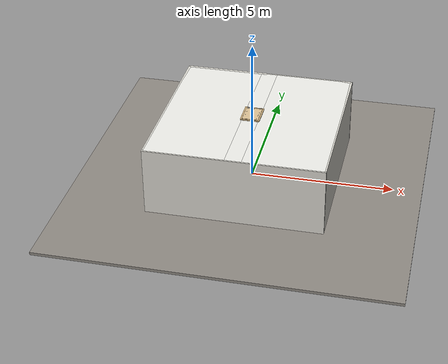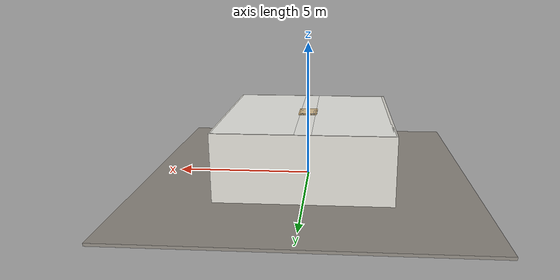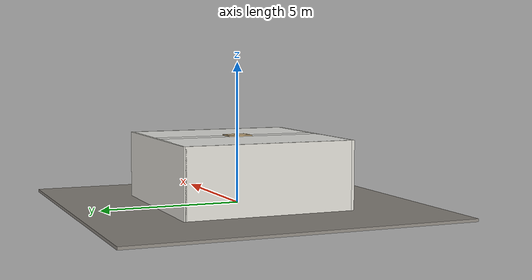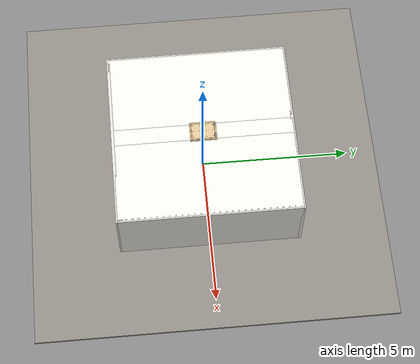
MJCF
<?xml version="1.0" ?>
<mujoco model="db0121_hatch_ceiling_full">
  <compiler angle="radian" meshdir="../../hardware" texturedir="../../textures" autolimits="true" inertiafromgeom="false"/>
  <option timestep="0.002" integrator="implicitfast" cone="elliptic" impratio="10" noslip_iterations="3">
    <flag multiccd="enable"/>
  </option>
  <size memory="16M"/>
  <default>
    <geom condim="4" solref="0.005 1" solimp="0.95 0.99 0.001"/>
    <joint solreflimit="0.005 1" solimplimit="0.95 0.99 0.001"/>
    <tendon solreflimit="0.005 1"/>
    <equality solref="0.002 1"/>
  </default>
  <visual>
    <headlight ambient="0.4 0.4 0.4" diffuse="0.7 0.7 0.7" specular="0.2 0.2 0.2"/>
    <quality shadowsize="4096"/>
    <map znear="0.01" zfar="60"/>
  </visual>
  <asset>
    <material name="mat_floor" rgba="0.55 0.53 0.5 1" specular="0.2" shininess="0.15" reflectance="0"/>
    <material name="mat_wall" rgba="0.78 0.76 0.7 1" specular="0.2" shininess="0.1" reflectance="0"/>
    <material name="mat_ceiling" rgba="0.92 0.92 0.9 1" specular="0.2" shininess="0.1" reflectance="0"/>
    <material name="mat_room_wall" rgba="0.86 0.85 0.82 1" specular="0.2" shininess="0.1" reflectance="0"/>
    <material name="mat_frame" rgba="0.82 0.7 0.5 1" specular="0.2" shininess="0.45" reflectance="0"/>
    <material name="mat_leaf" rgba="0.85 0.75 0.58 1" specular="0.2" shininess="0.4" reflectance="0"/>
    <material name="mat_hinge" rgba="0.65 0.66 0.68 1" specular="0.74" shininess="0.5" reflectance="0.36"/>
    <material name="mat_rivet" rgba="0.55 0.56 0.58 1" specular="0.8" shininess="0.55" reflectance="0.4"/>
    <material name="mat_op_steel" rgba="0.55 0.56 0.58 1" specular="0.8" shininess="0.55" reflectance="0.4"/>
    <material name="mat_strut" rgba="0.75 0.76 0.77 1" specular="0.8" shininess="0.65" reflectance="0.4"/>
    <texture name="skybox" type="skybox" builtin="gradient" rgb1="0.6 0.7 0.85" rgb2="0.9 0.92 0.95" width="256" height="256"/>
  </asset>
  <worldbody>
    <light name="sun" pos="1.5 -2.5 4" dir="-0.3 0.5 -0.8" directional="true" diffuse="0.8 0.8 0.8" specular="0.3 0.3 0.3" castshadow="true"/>
    <light name="fill" pos="-1.5 2.5 3" dir="0.3 -0.5 -0.7" directional="true" diffuse="0.35 0.35 0.4" castshadow="false"/>
    <camera name="robot_view" pos="0 -1.875 3.31" xyaxes="1 0 0 0 0.26963 0.962964" fovy="52"/>
    <camera name="far_view" pos="0 1.875 3.31" xyaxes="-1 0 0 0 -0.26963 0.962964" fovy="52"/>
    <camera name="iso" pos="1.425 -1.575 3.61" xyaxes="0.741536 0.670913 0 -0.242917 0.268487 0.932151" fovy="46"/>
    <camera name="detail_handle" pos="0.65 -0.55 1.55" xyaxes="0.843661 0.536875 0 0.426006 -0.669439 0.608581" fovy="38"/>
    <geom name="floor" type="box" size="6 6 0.05" pos="0 0 -0.05" material="mat_floor" group="0" contype="1" conaffinity="1" friction="0.8 0.005 0.0001" density="2400"/>
    <geom name="ceil_a" type="box" size="1.3575 3 0.05" pos="-1.6425 0 2.35" material="mat_ceiling" group="0" contype="1" conaffinity="1" friction="0.6 0.005 0.0001" density="600"/>
    <geom name="ceil_b" type="box" size="1.3575 3 0.05" pos="1.6425 0 2.35" material="mat_ceiling" group="0" contype="1" conaffinity="1" friction="0.6 0.005 0.0001" density="600"/>
    <geom name="ceil_c" type="box" size="0.285 1.3075 0.05" pos="0 -1.6925 2.35" material="mat_ceiling" group="0" contype="1" conaffinity="1" friction="0.6 0.005 0.0001" density="600"/>
    <geom name="ceil_d" type="box" size="0.285 1.3075 0.05" pos="0 1.6925 2.35" material="mat_ceiling" group="0" contype="1" conaffinity="1" friction="0.6 0.005 0.0001" density="600"/>
    <geom name="room_wall_l" type="box" size="0.05 3 1.2" pos="-3 0 1.2" material="mat_room_wall" group="0" contype="1" conaffinity="1" friction="0.6 0.005 0.0001" density="800"/>
    <geom name="room_wall_r" type="box" size="0.05 3 1.2" pos="3 0 1.2" material="mat_room_wall" group="0" contype="1" conaffinity="1" friction="0.6 0.005 0.0001" density="800"/>
    <geom name="room_wall_n" type="box" size="3.05 0.05 1.2" pos="0 -3 1.2" material="mat_room_wall" group="0" contype="1" conaffinity="1" friction="0.6 0.005 0.0001" density="800"/>
    <geom name="room_wall_f" type="box" size="3.05 0.05 1.2" pos="0 3 1.2" material="mat_room_wall" group="0" contype="1" conaffinity="1" friction="0.6 0.005 0.0001" density="800"/>
    <geom name="curb_l" type="box" size="0.025 0.435 0.02" pos="-0.31 0 2.42" material="mat_frame" group="0" contype="1" conaffinity="1" friction="0.6 0.005 0.0001" density="7850"/>
    <geom name="curb_r" type="box" size="0.025 0.435 0.02" pos="0.31 0 2.42" material="mat_frame" group="0" contype="1" conaffinity="1" friction="0.6 0.005 0.0001" density="7850"/>
    <geom name="curb_n" type="box" size="0.285 0.025 0.02" pos="0 -0.41 2.42" material="mat_frame" group="0" contype="1" conaffinity="1" friction="0.6 0.005 0.0001" density="7850"/>
    <geom name="curb_f" type="box" size="0.285 0.025 0.02" pos="0 0.41 2.42" material="mat_frame" group="0" contype="1" conaffinity="1" friction="0.6 0.005 0.0001" density="7850"/>
    <geom name="hatch_hinge_0_curb_n" type="cylinder" size="0.01 0.018" pos="-0.234 0.395 2.44" quat="0.707107 0 0.707107 0" material="mat_hinge" group="1" contype="0" conaffinity="0" density="7850"/>
    <geom name="hatch_hinge_0_curb_strap_n" type="box" size="0.018 0.032 0.005" pos="-0.234 0.415 2.43" material="mat_hinge" group="1" contype="0" conaffinity="0" density="7850"/>
    <geom name="hatch_hinge_0_curb_p" type="cylinder" size="0.01 0.018" pos="-0.146 0.395 2.44" quat="0.707107 0 0.707107 0" material="mat_hinge" group="1" contype="0" conaffinity="0" density="7850"/>
    <geom name="hatch_hinge_0_curb_strap_p" type="box" size="0.018 0.032 0.005" pos="-0.146 0.415 2.43" material="mat_hinge" group="1" contype="0" conaffinity="0" density="7850"/>
    <geom name="hatch_hinge_1_curb_n" type="cylinder" size="0.01 0.018" pos="0.146 0.395 2.44" quat="0.707107 0 0.707107 0" material="mat_hinge" group="1" contype="0" conaffinity="0" density="7850"/>
    <geom name="hatch_hinge_1_curb_strap_n" type="box" size="0.018 0.032 0.005" pos="0.146 0.415 2.43" material="mat_hinge" group="1" contype="0" conaffinity="0" density="7850"/>
    <geom name="hatch_hinge_1_curb_p" type="cylinder" size="0.01 0.018" pos="0.234 0.395 2.44" quat="0.707107 0 0.707107 0" material="mat_hinge" group="1" contype="0" conaffinity="0" density="7850"/>
    <geom name="hatch_hinge_1_curb_strap_p" type="box" size="0.018 0.032 0.005" pos="0.234 0.415 2.43" material="mat_hinge" group="1" contype="0" conaffinity="0" density="7850"/>
    <site name="approach_point" pos="0 -1.5 0" quat="1 0 0 0" size="0.05" rgba="0.2 0.9 0.2 0.5" group="4"/>
    <site name="goal_point" pos="0 0 2.9" quat="1 0 0 0" size="0.05" rgba="0.2 0.9 0.2 0.5" group="4"/>
    <site name="door_plane_center" pos="0 0 2.4" quat="1 0 0 0" size="0.02" rgba="0.2 0.9 0.2 0.5" group="4"/>
    <body name="hatch" pos="0 0.385 2.44">
      <inertial pos="0.045012 -0.330341 -0.02865" mass="4.916464" quat="-0.054664 0.729045 0.676923 -0.08533" diaginertia="0.176898121 0.262952027 0.399589364"/>
      <joint name="hatch_hinge" type="hinge" axis="-1 0 0" pos="0 0.01 0" limited="true" range="0 1.396263" damping="30.513498" frictionloss="0.416569" stiffness="16.875" springref="-3.333333" armature="0.02"/>
      <geom name="hatch_slab" type="box" size="0.28 0.381 0.006" pos="0 -0.385 0" material="mat_leaf" group="0" contype="1" conaffinity="1" friction="0.6 0.005 0.0001" density="1"/>
      <geom name="hatch_hinge_0" type="cylinder" size="0.01 0.028" pos="-0.19 0.01 0" quat="0.707107 0 0.707107 0" material="mat_hinge" group="1" contype="0" conaffinity="0" density="7850"/>
      <geom name="hatch_hinge_0_strap" type="box" size="0.028 0.023 0.003" pos="-0.19 -0.007 0.005" material="mat_hinge" group="1" contype="0" conaffinity="0" density="7850"/>
      <geom name="hatch_hinge_1" type="cylinder" size="0.01 0.028" pos="0.19 0.01 0" quat="0.707107 0 0.707107 0" material="mat_hinge" group="1" contype="0" conaffinity="0" density="7850"/>
      <geom name="hatch_hinge_1_strap" type="box" size="0.028 0.023 0.003" pos="0.19 -0.007 0.005" material="mat_hinge" group="1" contype="0" conaffinity="0" density="7850"/>
      <geom name="rivet_0_0" type="sphere" size="0.01" pos="-0.22 -0.06 0.006" material="mat_rivet" group="2" contype="0" conaffinity="0" density="7850"/>
      <geom name="rivet_0_1" type="sphere" size="0.01" pos="0 -0.06 0.006" material="mat_rivet" group="2" contype="0" conaffinity="0" density="7850"/>
      <geom name="rivet_0_2" type="sphere" size="0.01" pos="0.22 -0.06 0.006" material="mat_rivet" group="2" contype="0" conaffinity="0" density="7850"/>
      <geom name="rivet_1_0" type="sphere" size="0.01" pos="-0.22 -0.276667 0.006" material="mat_rivet" group="2" contype="0" conaffinity="0" density="7850"/>
      <geom name="rivet_1_1" type="sphere" size="0.01" pos="0 -0.276667 0.006" material="mat_rivet" group="2" contype="0" conaffinity="0" density="7850"/>
      <geom name="rivet_1_2" type="sphere" size="0.01" pos="0.22 -0.276667 0.006" material="mat_rivet" group="2" contype="0" conaffinity="0" density="7850"/>
      <geom name="rivet_2_0" type="sphere" size="0.01" pos="-0.22 -0.493333 0.006" material="mat_rivet" group="2" contype="0" conaffinity="0" density="7850"/>
      <geom name="rivet_2_1" type="sphere" size="0.01" pos="0 -0.493333 0.006" material="mat_rivet" group="2" contype="0" conaffinity="0" density="7850"/>
      <geom name="rivet_2_2" type="sphere" size="0.01" pos="0.22 -0.493333 0.006" material="mat_rivet" group="2" contype="0" conaffinity="0" density="7850"/>
      <geom name="rivet_3_0" type="sphere" size="0.01" pos="-0.22 -0.71 0.006" material="mat_rivet" group="2" contype="0" conaffinity="0" density="7850"/>
      <geom name="rivet_3_1" type="sphere" size="0.01" pos="0 -0.71 0.006" material="mat_rivet" group="2" contype="0" conaffinity="0" density="7850"/>
      <geom name="rivet_3_2" type="sphere" size="0.01" pos="0.22 -0.71 0.006" material="mat_rivet" group="2" contype="0" conaffinity="0" density="7850"/>
      <geom name="gas_strut" type="cylinder" size="0.01 0.2" pos="0.23 -0.308 -0.15" quat="0.316228 -0.948683 0 0" material="mat_strut" group="1" contype="0" conaffinity="0" density="7900"/>
    </body>
  </worldbody>
  <sensor>
    <jointpos name="hatch_hinge_pos" joint="hatch_hinge"/>
    <jointvel name="hatch_hinge_vel" joint="hatch_hinge"/>
  </sensor>
</mujoco>
